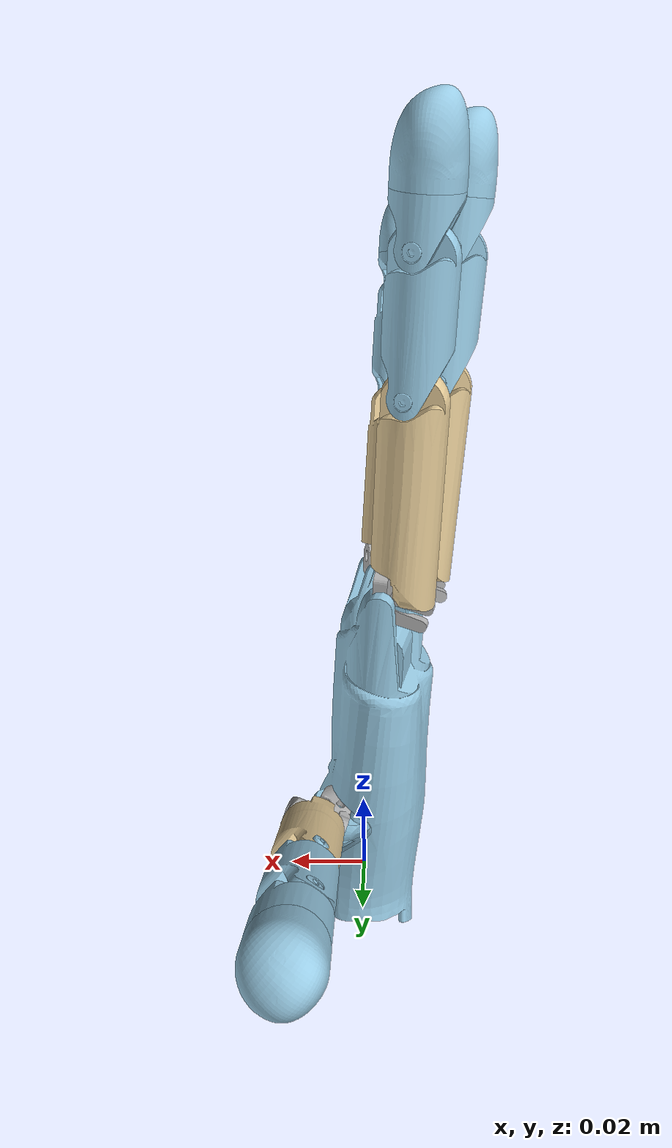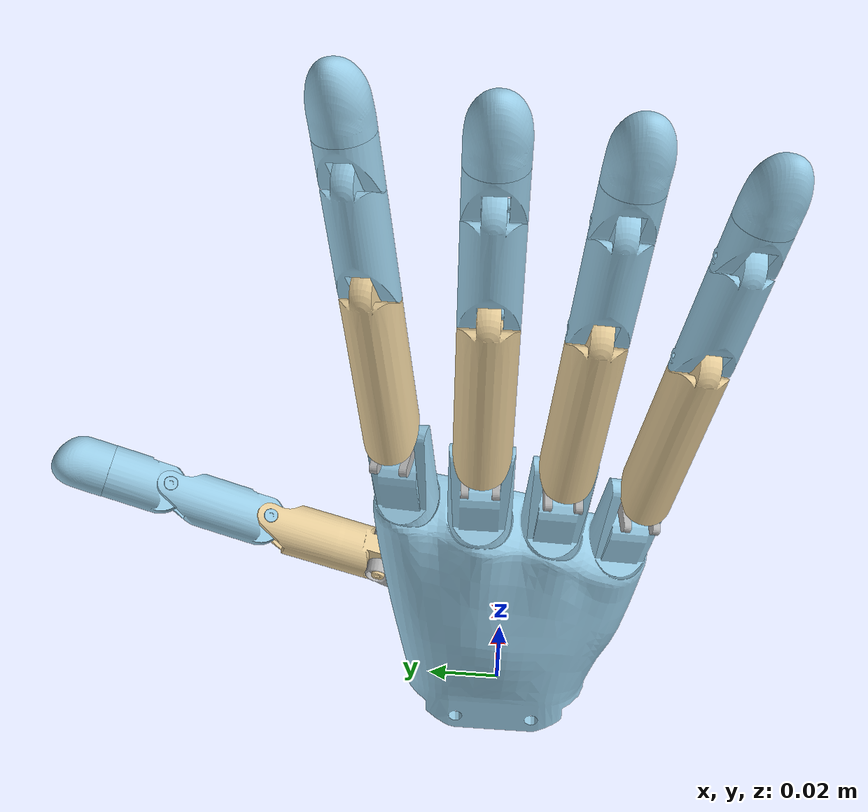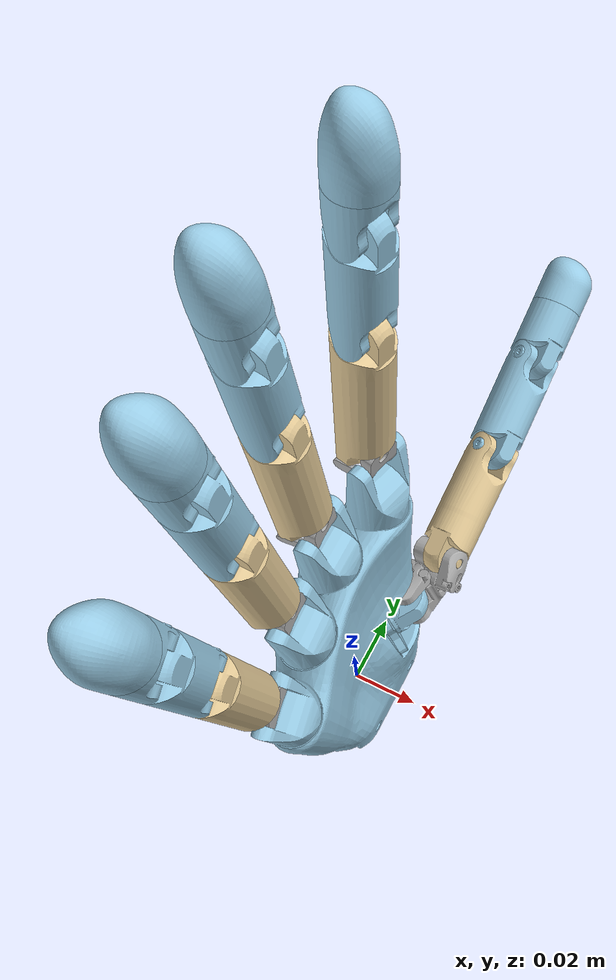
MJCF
<mujoco model="wujihand-right">
  <compiler angle="radian" meshdir="../meshes/right/" />

  <option jacobian="sparse"
          integrator="RK4"
          timestep="0.002"
          solver="Newton"
          iterations="50"
          tolerance="1e-10"
          impratio="10"/>

  <default>
    <joint armature="0.005" damping="0.05" frictionloss="0.01"/>
  </default>
  <asset>
    <mesh name="right_palm_link" content_type="model/stl" file="right_palm_link.STL" />
    <mesh name="right_finger1_link1" content_type="model/stl" file="right_finger1_link1.STL" />
    <mesh name="right_finger1_link2" content_type="model/stl" file="right_finger1_link2.STL" />
    <mesh name="right_finger1_link3" content_type="model/stl" file="right_finger1_link3.STL" />
    <mesh name="right_finger1_link4" content_type="model/stl" file="right_finger1_link4.STL" />
    <mesh name="right_finger1_tip_link" content_type="model/stl" file="right_finger1_tip_link.STL" />
    <mesh name="right_finger2_link1" content_type="model/stl" file="right_finger2_link1.STL" />
    <mesh name="right_finger2_link2" content_type="model/stl" file="right_finger2_link2.STL" />
    <mesh name="right_finger2_link3" content_type="model/stl" file="right_finger2_link3.STL" />
    <mesh name="right_finger2_link4" content_type="model/stl" file="right_finger2_link4.STL" />
    <mesh name="right_finger2_tip_link" content_type="model/stl" file="right_finger2_tip_link.STL" />
    <mesh name="right_finger3_link1" content_type="model/stl" file="right_finger3_link1.STL" />
    <mesh name="right_finger3_link2" content_type="model/stl" file="right_finger3_link2.STL" />
    <mesh name="right_finger3_link3" content_type="model/stl" file="right_finger3_link3.STL" />
    <mesh name="right_finger3_link4" content_type="model/stl" file="right_finger3_link4.STL" />
    <mesh name="right_finger3_tip_link" content_type="model/stl" file="right_finger3_tip_link.STL" />
    <mesh name="right_finger4_link1" content_type="model/stl" file="right_finger4_link1.STL" />
    <mesh name="right_finger4_link2" content_type="model/stl" file="right_finger4_link2.STL" />
    <mesh name="right_finger4_link3" content_type="model/stl" file="right_finger4_link3.STL" />
    <mesh name="right_finger4_link4" content_type="model/stl" file="right_finger4_link4.STL" />
    <mesh name="right_finger4_tip_link" content_type="model/stl" file="right_finger4_tip_link.STL" />
    <mesh name="right_finger5_link1" content_type="model/stl" file="right_finger5_link1.STL" />
    <mesh name="right_finger5_link2" content_type="model/stl" file="right_finger5_link2.STL" />
    <mesh name="right_finger5_link3" content_type="model/stl" file="right_finger5_link3.STL" />
    <mesh name="right_finger5_link4" content_type="model/stl" file="right_finger5_link4.STL" />
    <mesh name="right_finger5_tip_link" content_type="model/stl" file="right_finger5_tip_link.STL" />
  </asset>

  <worldbody>
    <geom type="mesh" contype="0" conaffinity="0" group="1" density="0" rgba="0.6 0.8 0.9 1" mesh="right_palm_link" />
    <geom type="mesh" rgba="0.6 0.8 0.9 1" mesh="right_palm_link" contype="1" conaffinity="1" />
    <body name="right_finger1_link1" pos="0.0085244 0.020575 0.028712" quat="0.682219 -0.617669 0.0805047 -0.382859">
      <inertial pos="-0.0024628 -0.0014428 0.0077802" quat="0.904243 0.21652 0.0443878 -0.365368" mass="0.0075" diaginertia="3.37599e-07 3.01198e-07 2.11203e-07" />
      <joint name="right_finger1_joint1" pos="0 0 0" axis="0 1 0" range="0.0368 1.6125" actuatorfrcrange="-0.4452 0.4452" />
      <geom type="mesh" contype="0" conaffinity="0" group="1" density="0" rgba="0.7 0.7 0.7 1" mesh="right_finger1_link1" />
      <geom type="mesh" rgba="0.7 0.7 0.7 1" mesh="right_finger1_link1" contype="0" conaffinity="0" />
      <body name="right_finger1_link2" pos="-0.0047549 -0.0060191 0.014132" quat="0.616955 -0.0855901 -0.290851 0.726255">
        <inertial pos="0.0011196 -1.2405e-05 0.015663" quat="0.815906 0.0024483 -0.00462559 0.57816" mass="0.0248" diaginertia="2.81725e-06 2.75299e-06 6.79766e-07" />
        <joint name="right_finger1_joint2" pos="0 0 0" axis="0 -1 0" range="-0.1576 0.9312" actuatorfrcrange="-0.4259 0.4259" />
        <geom type="mesh" contype="0" conaffinity="0" group="1" density="0" rgba="0.9 0.8 0.6 1" mesh="right_finger1_link2" />
        <geom type="mesh" rgba="0.9 0.8 0.6 1" mesh="right_finger1_link2" contype="2" conaffinity="2" />
        <body name="right_finger1_link3" pos="0.00018873 -0.0009916 0.034664" quat="0.577852 0.0212383 -0.0150031 -0.815727">
          <inertial pos="-0.0011235 -1.579e-05 0.013056" quat="0.999951 0 0.00989566 0" mass="0.0165" diaginertia="1.4604e-06 1.42e-06 4.49604e-07" />
          <joint name="right_finger1_joint3" pos="0 0 0" axis="0 1 0" range="-0.4638 1.5607" actuatorfrcrange="-0.1888 0.1888" />
          <geom type="mesh" contype="0" conaffinity="0" group="1" density="0" rgba="0.6 0.8 0.9 1" mesh="right_finger1_link3" />
          <geom type="mesh" rgba="0.6 0.8 0.9 1" mesh="right_finger1_link3" contype="1" conaffinity="1" />
          <body name="right_finger1_link4" pos="0 -0.00025 0.0295">
            <inertial pos="-0.00160983 0.000234366 0.0113487" quat="0.705453 -0.0487835 -0.0489426 0.705379" mass="0.0206" diaginertia="2.60023e-06 2.58038e-06 7.59852e-07" />
            <joint name="right_finger1_joint4" pos="0 0 0" axis="0 1 0" range="-0.4829 1.5451" actuatorfrcrange="-0.1468 0.1468" />
            <geom type="mesh" contype="0" conaffinity="0" group="1" density="0" rgba="0.6 0.8 0.9 1" mesh="right_finger1_link4" />
            <geom type="mesh" rgba="0.6 0.8 0.9 1" mesh="right_finger1_link4" contype="1" conaffinity="1" />
            <geom pos="-0.0011048 0.00023218 0.0283" type="mesh" contype="0" conaffinity="0" group="1" density="0" rgba="0.6 0.8 0.9 1" mesh="right_finger1_tip_link" />
            <geom pos="-0.0011048 0.00023218 0.0283" type="mesh" rgba="0.6 0.8 0.9 1" mesh="right_finger1_tip_link" contype="1" conaffinity="1" />
          </body>
        </body>
      </body>
    </body>
    <body name="right_finger2_link1" pos="-0.0058701 0.029434 0.091917" quat="0.991689 -0.0588295 -0.0292755 -0.110614">
      <inertial pos="-0.0013291 -3.2911e-08 0.00031987" quat="0.92388 0 0.382683 0" mass="0.0032" diaginertia="1.1e-07 7e-08 5e-08" />
      <joint name="right_finger2_joint1" pos="0 0 0" axis="0 1 0" range="-0.1611 1.5588" actuatorfrcrange="-0.6188 0.6188" />
      <geom type="mesh" contype="0" conaffinity="0" group="1" density="0" rgba="0.7 0.7 0.7 1" mesh="right_finger2_link1" />
      <geom type="mesh" rgba="0.7 0.7 0.7 1" mesh="right_finger2_link1" contype="0" conaffinity="0" />
      <body name="right_finger2_link2" pos="0.0022 0 0.004">
        <inertial pos="-0.0061577 -4.1189e-07 0.020911" quat="0.70703 0.0104245 0.0104245 0.70703" mass="0.033" diaginertia="6.34e-06 6.31472e-06 8.85281e-07" />
        <joint name="right_finger2_joint2" pos="0 0 0" axis="-1 0 0" range="-0.37 0.37" actuatorfrcrange="-0.1822 0.1822" />
        <geom type="mesh" contype="0" conaffinity="0" group="1" density="0" rgba="0.9 0.8 0.6 1" mesh="right_finger2_link2" />
        <geom type="mesh" rgba="0.9 0.8 0.6 1" mesh="right_finger2_link2" contype="2" conaffinity="2" />
        <body name="right_finger2_link3" pos="-0.0047503 0 0.043618" quat="1 0 0 -0.000134305">
          <inertial pos="-0.0011668 4.1873e-06 0.026893" quat="0.999892 0 -0.0146884 0" mass="0.0165" diaginertia="1.47088e-06 1.44e-06 4.49118e-07" />
          <joint name="right_finger2_joint3" pos="0 0 0" axis="0 1 0" range="-0.4714 1.5504" actuatorfrcrange="-0.2251 0.2251" />
          <geom type="mesh" contype="0" conaffinity="0" group="1" density="0" rgba="0.6 0.8 0.9 1" mesh="right_finger2_link3" />
          <geom type="mesh" rgba="0.6 0.8 0.9 1" mesh="right_finger2_link3" contype="1" conaffinity="1" />
          <body name="right_finger2_link4" pos="0 0 0.0295">
            <inertial pos="-0.000766056 -0.000179751 0.00770944" quat="0.998354 0.0103509 -0.0508894 0.0243386" mass="0.01718" diaginertia="1.58547e-06 1.49202e-06 4.21685e-07" />
            <joint name="right_finger2_joint4" pos="0 0 0" axis="0 1 0" range="-0.4644 1.5753" actuatorfrcrange="-0.217 0.217" />
            <geom type="mesh" contype="0" conaffinity="0" group="1" density="0" rgba="0.6 0.8 0.9 1" mesh="right_finger2_link4" />
            <geom type="mesh" rgba="0.6 0.8 0.9 1" mesh="right_finger2_link4" contype="1" conaffinity="1" />
            <geom pos="-0.00105 0 0.0274" type="mesh" contype="0" conaffinity="0" group="1" density="0" rgba="0.6 0.8 0.9 1" mesh="right_finger2_tip_link" />
            <geom pos="-0.00105 0 0.0274" type="mesh" rgba="0.6 0.8 0.9 1" mesh="right_finger2_tip_link" contype="1" conaffinity="1" />
          </body>
        </body>
      </body>
    </body>
    <body name="right_finger3_link1" pos="-0.01046 0.0074615 0.089544" quat="0.999048 -1.26848e-05 -0.0436192 0.000290547">
      <inertial pos="-0.0013291 3.4987e-09 0.00031994" quat="0.92388 0 0.382683 0" mass="0.0032" diaginertia="1.1e-07 7e-08 5e-08" />
      <joint name="right_finger3_joint1" pos="0 0 0" axis="0 1 0" range="-0.1719 1.5496" actuatorfrcrange="-0.6494 0.6494" />
      <geom type="mesh" contype="0" conaffinity="0" group="1" density="0" rgba="0.7 0.7 0.7 1" mesh="right_finger3_link1" />
      <geom type="mesh" rgba="0.7 0.7 0.7 1" mesh="right_finger3_link1" contype="0" conaffinity="0" />
      <body name="right_finger3_link2" pos="0.0022 0 0.004">
        <inertial pos="-0.0061576 -4.1651e-07 0.020911" quat="0.70703 0.0104245 0.0104245 0.70703" mass="0.033" diaginertia="6.34e-06 6.31472e-06 8.85281e-07" />
        <joint name="right_finger3_joint2" pos="0 0 0" axis="-1 0 0" range="-0.37 0.37" actuatorfrcrange="-0.1827 0.1827" />
        <geom type="mesh" contype="0" conaffinity="0" group="1" density="0" rgba="0.9 0.8 0.6 1" mesh="right_finger3_link2" />
        <geom type="mesh" rgba="0.9 0.8 0.6 1" mesh="right_finger3_link2" contype="2" conaffinity="2" />
        <body name="right_finger3_link3" pos="-0.00475 0 0.043618" quat="1 0 0 -0.000134305">
          <inertial pos="-0.0011214 4.331e-06 0.015763" quat="0.999892 0 -0.0146884 0" mass="0.0165" diaginertia="1.47088e-06 1.44e-06 4.49118e-07" />
          <joint name="right_finger3_joint3" pos="0 0 0" axis="0 1 0" range="-0.4632 1.5613" actuatorfrcrange="-0.2078 0.2078" />
          <geom type="mesh" contype="0" conaffinity="0" group="1" density="0" rgba="0.6 0.8 0.9 1" mesh="right_finger3_link3" />
          <geom type="mesh" rgba="0.6 0.8 0.9 1" mesh="right_finger3_link3" contype="1" conaffinity="1" />
          <body name="right_finger3_link4" pos="0 0 0.0295">
            <inertial pos="-0.000766442 -0.000180017 0.00770944" quat="0.998352 0.0103722 -0.0509199 0.0243491" mass="0.01718" diaginertia="1.5855e-06 1.49202e-06 4.21669e-07" />
            <joint name="right_finger3_joint4" pos="0 0 0" axis="0 1 0" range="-0.4697 1.5702" actuatorfrcrange="-0.2018 0.2018" />
            <geom type="mesh" contype="0" conaffinity="0" group="1" density="0" rgba="0.6 0.8 0.9 1" mesh="right_finger3_link4" />
            <geom type="mesh" rgba="0.6 0.8 0.9 1" mesh="right_finger3_link4" contype="1" conaffinity="1" />
            <geom pos="-0.0010491 0 0.0267" type="mesh" contype="0" conaffinity="0" group="1" density="0" rgba="0.6 0.8 0.9 1" mesh="right_finger3_tip_link" />
            <geom pos="-0.0010491 0 0.0267" type="mesh" rgba="0.6 0.8 0.9 1" mesh="right_finger3_tip_link" contype="1" conaffinity="1" />
          </body>
        </body>
      </body>
    </body>
    <body name="right_finger4_link1" pos="-0.0076649 -0.013712 0.084429" quat="0.997789 0.0461019 -0.0405884 0.0254002">
      <inertial pos="-0.0013291 1.0048e-08 0.00031995" quat="0.92388 0 0.382683 0" mass="0.0032" diaginertia="1.1e-07 7e-08 5e-08" />
      <joint name="right_finger4_joint1" pos="0 0 0" axis="0 1 0" range="-0.1601 1.5534" actuatorfrcrange="-0.6389 0.6389" />
      <geom type="mesh" contype="0" conaffinity="0" group="1" density="0" rgba="0.7 0.7 0.7 1" mesh="right_finger4_link1" />
      <geom type="mesh" rgba="0.7 0.7 0.7 1" mesh="right_finger4_link1" contype="0" conaffinity="0" />
      <body name="right_finger4_link2" pos="0.0022 0 0.004">
        <inertial pos="-0.0061576 -4.1601e-07 0.020911" quat="0.70703 0.0104245 0.0104245 0.70703" mass="0.033" diaginertia="6.34e-06 6.31472e-06 8.85281e-07" />
        <joint name="right_finger4_joint2" pos="0 0 0" axis="-1 0 0" range="-0.37 0.37" actuatorfrcrange="-0.1832 0.1832" />
        <geom type="mesh" contype="0" conaffinity="0" group="1" density="0" rgba="0.9 0.8 0.6 1" mesh="right_finger4_link2" />
        <geom type="mesh" rgba="0.9 0.8 0.6 1" mesh="right_finger4_link2" contype="2" conaffinity="2" />
        <body name="right_finger4_link3" pos="-0.00475 0 0.043618" quat="1 0 0 -0.000134305">
          <inertial pos="-0.0011214 4.3494e-06 0.015763" quat="0.999892 0 -0.0146884 0" mass="0.0165" diaginertia="1.47088e-06 1.44e-06 4.49118e-07" />
          <joint name="right_finger4_joint3" pos="0 0 0" axis="0 1 0" range="-0.4782 1.5448" actuatorfrcrange="-0.2249 0.2249" />
          <geom type="mesh" contype="0" conaffinity="0" group="1" density="0" rgba="0.6 0.8 0.9 1" mesh="right_finger4_link3" />
          <geom type="mesh" rgba="0.6 0.8 0.9 1" mesh="right_finger4_link3" contype="1" conaffinity="1" />
          <body name="right_finger4_link4" pos="0 0 0.0295">
            <inertial pos="-0.000766431 -0.000180689 0.00770952" quat="0.998349 0.0104237 -0.0509196 0.0244494" mass="0.01718" diaginertia="1.58554e-06 1.49205e-06 4.21684e-07" />
            <joint name="right_finger4_joint4" pos="0 0 0" axis="0 1 0" range="-0.4825 1.555" actuatorfrcrange="-0.2044 0.2044" />
            <geom type="mesh" contype="0" conaffinity="0" group="1" density="0" rgba="0.6 0.8 0.9 1" mesh="right_finger4_link4" />
            <geom type="mesh" rgba="0.6 0.8 0.9 1" mesh="right_finger4_link4" contype="1" conaffinity="1" />
            <geom pos="-0.0010528 0 0.0267" type="mesh" contype="0" conaffinity="0" group="1" density="0" rgba="0.6 0.8 0.9 1" mesh="right_finger4_tip_link" />
            <geom pos="-0.0010528 0 0.0267" type="mesh" rgba="0.6 0.8 0.9 1" mesh="right_finger4_tip_link" contype="1" conaffinity="1" />
          </body>
        </body>
      </body>
    </body>
    <body name="right_finger5_link1" pos="-0.0022687 -0.034001 0.074281" quat="0.99087 0.0993154 -0.0383256 0.0827347">
      <inertial pos="-0.0013291 1.7235e-08 0.00031997" quat="0.92388 0 0.382683 0" mass="0.0032" diaginertia="1.1e-07 7e-08 5e-08" />
      <joint name="right_finger5_joint1" pos="0 0 0" axis="0 1 0" range="-0.1674 1.5539" actuatorfrcrange="-0.6441 0.6441" />
      <geom type="mesh" contype="0" conaffinity="0" group="1" density="0" rgba="0.7 0.7 0.7 1" mesh="right_finger5_link1" />
      <geom type="mesh" rgba="0.7 0.7 0.7 1" mesh="right_finger5_link1" contype="0" conaffinity="0" />
      <body name="right_finger5_link2" pos="0.0022 0 0.004">
        <inertial pos="-0.0061576 -4.1475e-07 0.020911" quat="0.70703 0.0104245 0.0104245 0.70703" mass="0.033" diaginertia="6.34e-06 6.31472e-06 8.85281e-07" />
        <joint name="right_finger5_joint2" pos="0 0 0" axis="-1 0 0" range="-0.37 0.37" actuatorfrcrange="-0.1798 0.1798" />
        <geom type="mesh" contype="0" conaffinity="0" group="1" density="0" rgba="0.9 0.8 0.6 1" mesh="right_finger5_link2" />
        <geom type="mesh" rgba="0.9 0.8 0.6 1" mesh="right_finger5_link2" contype="2" conaffinity="2" />
        <body name="right_finger5_link3" pos="-0.00475 0 0.043618" quat="1 0 0 -0.000134305">
          <inertial pos="-0.0011214 4.3703e-06 0.015763" quat="0.999892 0 -0.0146884 0" mass="0.0165" diaginertia="1.47088e-06 1.44e-06 4.49118e-07" />
          <joint name="right_finger5_joint3" pos="0 0 0" axis="0 1 0" range="-0.4804 1.542" actuatorfrcrange="-0.2384 0.2384" />
          <geom type="mesh" contype="0" conaffinity="0" group="1" density="0" rgba="0.6 0.8 0.9 1" mesh="right_finger5_link3" />
          <geom type="mesh" rgba="0.6 0.8 0.9 1" mesh="right_finger5_link3" contype="1" conaffinity="1" />
          <body name="right_finger5_link4" pos="0 0 0.0295">
            <inertial pos="-0.00076855 -0.000179174 0.00770942" quat="0.998351 0.0103138 -0.0510722 0.024077" mass="0.01718" diaginertia="1.58554e-06 1.49197e-06 4.21535e-07" />
            <joint name="right_finger5_joint4" pos="0 0 0" axis="0 1 0" range="-0.4705 1.5709" actuatorfrcrange="-0.1866 0.1866" />
            <geom type="mesh" contype="0" conaffinity="0" group="1" density="0" rgba="0.6 0.8 0.9 1" mesh="right_finger5_link4" />
            <geom type="mesh" rgba="0.6 0.8 0.9 1" mesh="right_finger5_link4" contype="1" conaffinity="1" />
            <geom pos="-0.0010446 1.1308e-05 0.0267" type="mesh" contype="0" conaffinity="0" group="1" density="0" rgba="0.6 0.8 0.9 1" mesh="right_finger5_tip_link" />
            <geom pos="-0.0010446 1.1308e-05 0.0267" type="mesh" rgba="0.6 0.8 0.9 1" mesh="right_finger5_tip_link" contype="1" conaffinity="1" />
          </body>
        </body>
      </body>
    </body>
  </worldbody>
  <actuator>
    <position name="right_finger1_joint1_actuator" joint="right_finger1_joint1" kp="0.5" ctrlrange="0.0368 1.6125" forcerange="-0.4452 0.4452" />
    <position name="right_finger1_joint2_actuator" joint="right_finger1_joint2" kp="0.5" ctrlrange="-0.1576 0.9312" forcerange="-0.4259 0.4259" />
    <position name="right_finger1_joint3_actuator" joint="right_finger1_joint3" kp="0.5" ctrlrange="-0.4638 1.5607" forcerange="-0.1888 0.1888" />
    <position name="right_finger1_joint4_actuator" joint="right_finger1_joint4" kp="0.5" ctrlrange="-0.4829 1.5451" forcerange="-0.1468 0.1468" />
    <position name="right_finger2_joint1_actuator" joint="right_finger2_joint1" kp="0.5" ctrlrange="-0.1611 1.5588" forcerange="-0.6188 0.6188" />
    <position name="right_finger2_joint2_actuator" joint="right_finger2_joint2" kp="0.5" ctrlrange="-0.37 0.37" forcerange="-0.1822 0.1822" />
    <position name="right_finger2_joint3_actuator" joint="right_finger2_joint3" kp="0.5" ctrlrange="-0.4714 1.5504" forcerange="-0.2251 0.2251" />
    <position name="right_finger2_joint4_actuator" joint="right_finger2_joint4" kp="0.5" ctrlrange="-0.4644 1.5753" forcerange="-0.217 0.217" />
    <position name="right_finger3_joint1_actuator" joint="right_finger3_joint1" kp="0.5" ctrlrange="-0.1719 1.5496" forcerange="-0.6494 0.6494" />
    <position name="right_finger3_joint2_actuator" joint="right_finger3_joint2" kp="0.5" ctrlrange="-0.37 0.37" forcerange="-0.1827 0.1827" />
    <position name="right_finger3_joint3_actuator" joint="right_finger3_joint3" kp="0.5" ctrlrange="-0.4632 1.5613" forcerange="-0.2078 0.2078" />
    <position name="right_finger3_joint4_actuator" joint="right_finger3_joint4" kp="0.5" ctrlrange="-0.4697 1.5702" forcerange="-0.2018 0.2018" />
    <position name="right_finger4_joint1_actuator" joint="right_finger4_joint1" kp="0.5" ctrlrange="-0.1601 1.5534" forcerange="-0.6389 0.6389" />
    <position name="right_finger4_joint2_actuator" joint="right_finger4_joint2" kp="0.5" ctrlrange="-0.37 0.37" forcerange="-0.1832 0.1832" />
    <position name="right_finger4_joint3_actuator" joint="right_finger4_joint3" kp="0.5" ctrlrange="-0.4782 1.5448" forcerange="-0.2249 0.2249" />
    <position name="right_finger4_joint4_actuator" joint="right_finger4_joint4" kp="0.5" ctrlrange="-0.4825 1.555" forcerange="-0.2044 0.2044" />
    <position name="right_finger5_joint1_actuator" joint="right_finger5_joint1" kp="0.5" ctrlrange="-0.1674 1.5539" forcerange="-0.6441 0.6441" />
    <position name="right_finger5_joint2_actuator" joint="right_finger5_joint2" kp="0.5" ctrlrange="-0.37 0.37" forcerange="-0.1798 0.1798" />
    <position name="right_finger5_joint3_actuator" joint="right_finger5_joint3" kp="0.5" ctrlrange="-0.4804 1.542" forcerange="-0.2384 0.2384" />
    <position name="right_finger5_joint4_actuator" joint="right_finger5_joint4" kp="0.5" ctrlrange="-0.4705 1.5709" forcerange="-0.1866 0.1866" />
  </actuator>
</mujoco>
